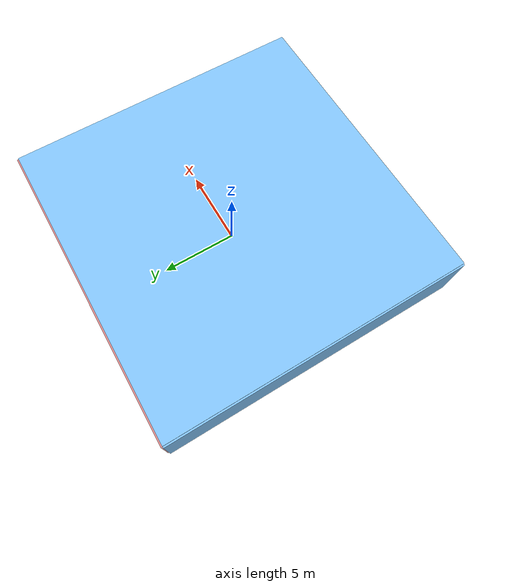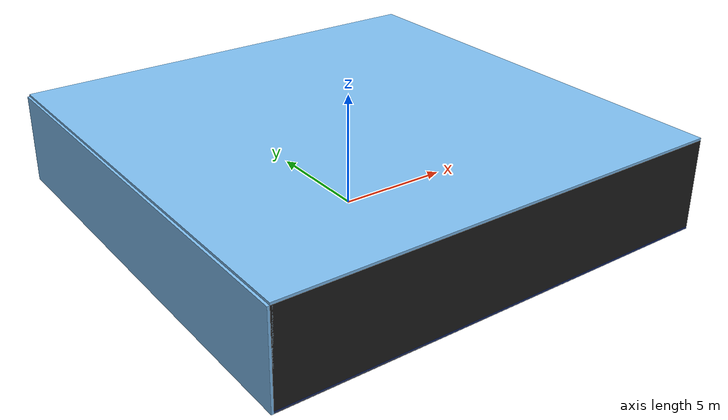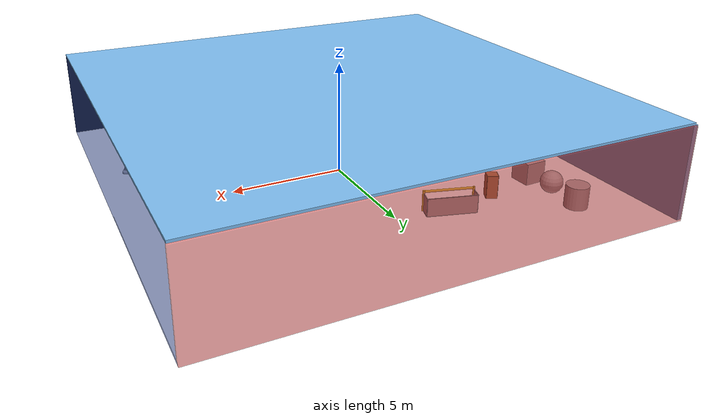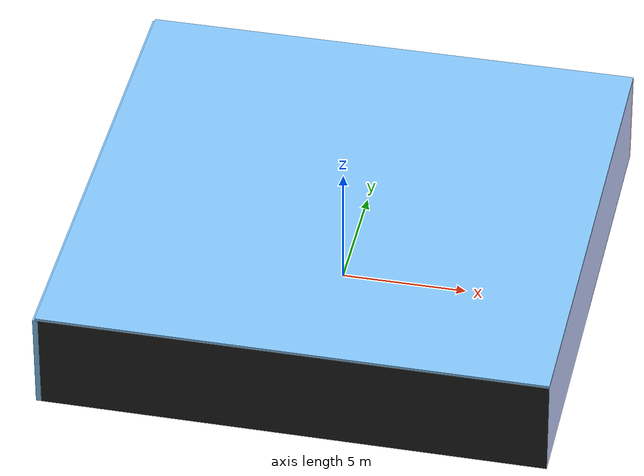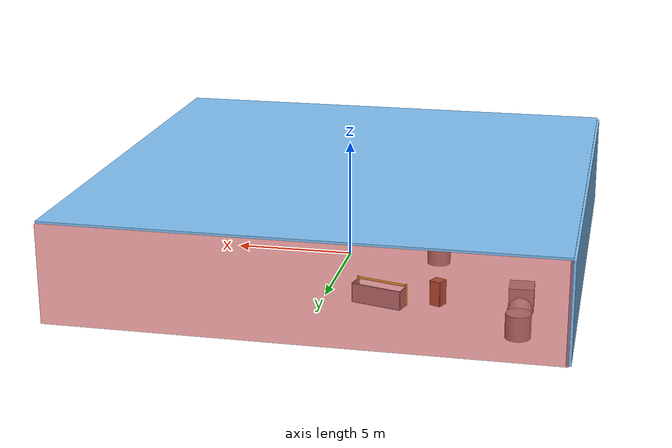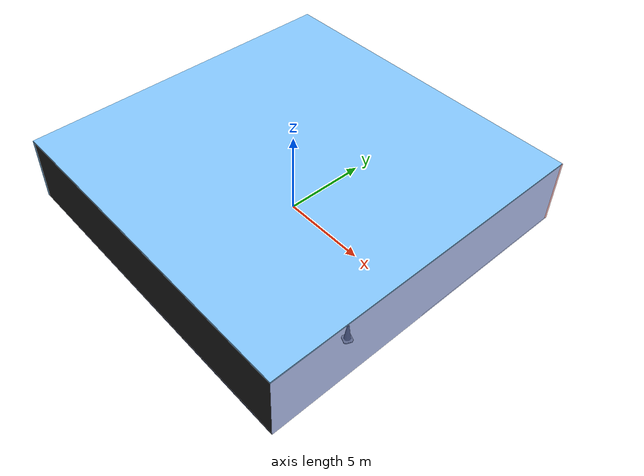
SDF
<sdf version="1.4">
 <world name="default">
  <physics type="ode">
   <max_step_size>0.001</max_step_size>
   <real_time_factor>1</real_time_factor>
   <real_time_update_rate>1000</real_time_update_rate>
   <gravity>0 0 -9.8</gravity>
  </physics>
  <scene><ambient>0.4 0.4 0.4 1</ambient><background>0.7 0.7 0.7 1</background><shadows>1</shadows></scene>
  <model name="Surrounding">
   <static>1</static>
   <link name="Ceiling">
    <collision name="Ceiling_Collision"><geometry><box><size>20 20 0.1</size></box></geometry></collision>
    <visual name="Ceiling_Visual">
     <geometry><box><size>20 20 0.1</size></box></geometry>
     <material>
      <script><uri>file://media/materials/scripts/gazebo.material</uri><name>Gazebo/SkyBlue</name></script>
     </material>
    </visual>
    <pose>0 0 4.05 0 0 0</pose>
   </link>
   <link name="Wall_South">
    <collision name="Wall_South_Collision">
     <geometry><box><size>20 0 4</size></box></geometry>
     <pose>0 0 2 0 -0 0</pose>
    </collision>
    <visual name="Wall_South_Visual">
     <pose>0 0 2 0 -0 0</pose>
     <geometry><box><size>20 0 4</size></box></geometry>
     <material>
      <script><uri>file://media/materials/scripts/gazebo.material</uri><name>Gazebo/FlatBlack</name></script>
     </material>
    </visual>
    <velocity_decay><linear>0</linear><angular>0</angular></velocity_decay>
    <pose>0 -10 0 0 -0 0</pose>
   </link>
   <link name="Wall_East">
    <collision name="Wall_21_Collision">
     <geometry><box><size>20 0 4</size></box></geometry>
     <pose>0 0 2 0 -0 0</pose>
    </collision>
    <visual name="Wall_21_Visual">
     <pose>0 0 2 0 -0 0</pose>
     <geometry><box><size>20 0 4</size></box></geometry>
     <material>
      <script><uri>file://media/materials/scripts/gazebo.material</uri><name>Gazebo/BlueTransparent</name></script>
     </material>
    </visual>
    <velocity_decay><linear>0</linear><angular>0</angular></velocity_decay>
    <pose>10 0 0 0 -0 1.5708</pose>
   </link>
   <link name="Wall_North">
    <collision name="Wall_22_Collision">
     <geometry><box><size>20 0.2 4</size></box></geometry>
     <pose>0 0 2 0 -0 0</pose>
    </collision>
    <visual name="Wall_22_Visual">
     <pose>0 0 2 0 -0 0</pose>
     <geometry><box><size>20 0.2 4</size></box></geometry>
     <material>
      <script><uri>file://media/materials/scripts/gazebo.material</uri><name>Gazebo/RedTransparent</name></script>
     </material>
    </visual>
    <velocity_decay><linear>0</linear><angular>0</angular></velocity_decay>
    <pose>0 10 0 0 -0 0</pose>
   </link>
   <link name="Wall_West">
    <collision name="Wall_23_Collision">
     <geometry><box><size>20 0.2 4</size></box></geometry>
     <pose>0 0 2 0 -0 0</pose>
    </collision>
    <visual name="Wall_23_Visual">
     <pose>0 0 2 0 -0 0</pose>
     <geometry><box><size>20 0.2 4</size></box></geometry>
     <material>
      <script><uri>file://media/materials/scripts/gazebo.material</uri><name>Gazebo/SkyBlue</name></script>
     </material>
    </visual>
    <velocity_decay><linear>0</linear><angular>0</angular></velocity_decay>
    <pose>-10 0 0 0 0 -1.5708</pose>
   </link>
   <link name="Ground_link">
    <collision name="collision">
     <pose>0 0 .05 0 -0 0</pose>
     <geometry><box><size>20 20 0.1</size></box></geometry>
    </collision>
    <visual name="visual">
     <pose>0 0 .05 0 -0 0</pose>
     <geometry><box><size>20 20 0.1</size></box></geometry>
     <material>
      <script><uri>file://media/materials/scripts/gazebo.material</uri><name>Gazebo/BlueTransparent</name></script>
     </material>
    </visual>
   </link>
   <static>1</static>
  </model>
  <spherical_coordinates>
   <surface_model>EARTH_WGS84</surface_model>
   <latitude_deg>0</latitude_deg>
   <longitude_deg>0</longitude_deg>
   <elevation>0</elevation>
   <heading_deg>0</heading_deg>
  </spherical_coordinates>
  <light name="lightball_0" type="diffuse">
   <diffuse>0.8 0.8 0.8 1</diffuse>
   <specular>0.2 0.2 0.2 1</specular>
   <attenuation>
    <range>100</range>
    <constant>0.7</constant>
    <linear>0.01</linear>
    <quadratic>0.001</quadratic>
   </attenuation>
   <direction>-0.5 0.1 -0.9</direction>
   <pose>1.3812855201 2.81673588304 2.19588317546 0 0 0</pose>
  </light>
  <light name="lightball_1" type="diffuse">
   <diffuse>0.8 0.8 0.8 1</diffuse>
   <specular>0.2 0.2 0.2 1</specular>
   <attenuation>
    <range>100</range>
    <constant>0.7</constant>
    <linear>0.01</linear>
    <quadratic>0.001</quadratic>
   </attenuation>
   <direction>-0.5 0.1 -0.9</direction>
   <pose>5.79797212997 -0.925427561203 3.41007947291 0 0 0</pose>
  </light>
  <light name="lightball_2" type="diffuse">
   <diffuse>0.8 0.8 0.8 1</diffuse>
   <specular>0.2 0.2 0.2 1</specular>
   <attenuation>
    <range>100</range>
    <constant>0.7</constant>
    <linear>0.01</linear>
    <quadratic>0.001</quadratic>
   </attenuation>
   <direction>-0.5 0.1 -0.9</direction>
   <pose>7.20825729168 4.65368353362 2.49114492403 0 0 0</pose>
  </light>
  <light name="lightball_3" type="diffuse">
   <diffuse>0.8 0.8 0.8 1</diffuse>
   <specular>0.2 0.2 0.2 1</specular>
   <attenuation>
    <range>100</range>
    <constant>0.7</constant>
    <linear>0.01</linear>
    <quadratic>0.001</quadratic>
   </attenuation>
   <direction>-0.5 0.1 -0.9</direction>
   <pose>4.54834297249 6.6533793759 3.08098066882 0 0 0</pose>
  </light>
  <include>
   <uri>model://textured_shapes</uri>
   <pose>-7.82404513388 5.08247657734 0 0 0 0.0430494927196</pose>
  </include>
  <include>
   <uri>model://textured_shapes</uri>
   <pose>-3.36397431719 -2.46486259461 0 0 0 0.261868524115</pose>
  </include>
  <include><uri>model://cabinet</uri><pose>-4.57699609707 5.05591744711 0 0 0 1.14166219779</pose></include>
  <include>
   <uri>model://robocup_3Dsim_goal</uri>
   <pose>-2.35272448283 5.22427167986 0 0 0 1.3000222169</pose>
  </include>
  <include>
   <uri>model://construction_cone</uri>
   <pose>4.28569062194 -2.21117782214 0 0 0 2.54901410205</pose>
  </include>
  <include>
   <uri>model://construction_cone</uri>
   <pose>8.56120154046 -4.04238066147 0 0 0 1.16498129446</pose>
  </include>
 </world>
</sdf>

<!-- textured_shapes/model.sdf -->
<sdf version="1.6">
  <model name="textured_shapes">
    <pose>0 0 0.5 0 0 0</pose>
    <link name="box">
      <pose>0 -1.5 0 0 0 0</pose>
      <collision name="collision">
        <geometry>
          <box>
            <size>1 1 1</size>
          </box>
        </geometry>
      </collision>
      <visual name="visual">
        <geometry>
          <box>
            <size>1 1 1</size>
          </box>
        </geometry>
        <material>
          <script>
            <uri>model://../model_source/models/textured_shapes/materials/scripts</uri>
            <uri>model://../model_source/models/textured_shapes/materials/textures</uri>
            <name>TexturedShape/Squares</name>
          </script>
        </material>
      </visual>
    </link>
    <link name="sphere">
      <collision name="collision">
        <geometry>
          <sphere>
            <radius>0.5</radius>
          </sphere>
        </geometry>
      </collision>
      <visual name="visual">
        <geometry>
          <sphere>
            <radius>0.5</radius>
          </sphere>
        </geometry>
        <material>
          <script>
            <uri>model://../model_source/models/textured_shapes/materials/scripts</uri>
            <uri>model://../model_source/models/textured_shapes/materials/textures</uri>
            <name>TexturedShape/Squares</name>
          </script>
        </material>
      </visual>
    </link>
    <link name="cylinder">
      <pose>0 1.5 0 0 0 0</pose>
      <collision name="collision">
        <geometry>
          <cylinder>
            <radius>0.5</radius>
            <length>1</length>
          </cylinder>
        </geometry>
      </collision>
      <visual name="visual">
        <geometry>
          <cylinder>
            <radius>0.5</radius>
            <length>1</length>
          </cylinder>
        </geometry>
        <material>
          <script>
            <uri>model://../model_source/models/textured_shapes/materials/scripts</uri>
            <uri>model://../model_source/models/textured_shapes/materials/textures</uri>
            <name>TexturedShape/Squares</name>
          </script>
        </material>
      </visual>
    </link>
  </model>
</sdf>

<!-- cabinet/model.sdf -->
<sdf version="1.5">
  <model name="cabinet">
    <static>true</static>
    <link name="cabinet_bottom_plate">
      <inertial>
        <pose>0 0 -1 0 0 0</pose>
        <inertia>
          <ixx>2.050000</ixx>
          <ixy>0</ixy>
          <ixz>0</ixz>
          <iyy>2.050000</iyy>
          <iyz>0</iyz>
          <izz>2.050000</izz>
        </inertia>
        <mass>25.000000</mass>
      </inertial>
      <collision name="cabinet_bottom_plate_geom">
        <pose>0 0 0.010000 0 0 0</pose>
        <geometry>
          <box>
            <size>0.450000 0.450000 0.020000</size>
          </box>
        </geometry>
      </collision>
      <visual name="cabinet_bottom_plate_geom_visual">
        <pose>0 0 0.010000 0 0 0</pose>
        <geometry>
          <box>
            <size>0.450000 0.450000 0.020000</size>
          </box>
        </geometry>
        <material>
          <script>
            <uri>model://media/materials/scripts/gazebo.material</uri>
            <name>Gazebo/Wood</name>
          </script>
        </material>
      </visual>
      <collision name="cabinet_bottom_plate_geom_cabinet_back_plate">
        <pose>0.235000 0 0.510000 0 0 0</pose>
        <geometry>
          <box>
            <size>0.020000 0.450000 1.020000</size>
          </box>
        </geometry>
      </collision>
      <visual name="cabinet_bottom_plate_geom_cabinet_back_plate_visual">
        <pose>0.235000 0 0.510000 0 0 0</pose>
        <geometry>
          <box>
            <size>0.020000 0.450000 1.020000</size>
          </box>
        </geometry>
        <material>
          <script>
            <uri>model://media/materials/scripts/gazebo.material</uri>
            <name>Gazebo/Wood</name>
          </script>
        </material>
      </visual>
      <collision name="cabinet_bottom_plate_geom_cabinet_left_plate">
        <pose>0 0.235000 0.510000 0 0 0</pose>
        <geometry>
          <box>
            <size>0.450000 0.020000 1.020000</size>
          </box>
        </geometry>
      </collision>
      <visual name="cabinet_bottom_plate_geom_cabinet_left_plate_visual">
        <pose>0 0.235000 0.510000 0 0 0</pose>
        <geometry>
          <box>
            <size>0.450000 0.020000 1.020000</size>
          </box>
        </geometry>
        <material>
          <script>
            <uri>model://media/materials/scripts/gazebo.material</uri>
            <name>Gazebo/Wood</name>
          </script>
        </material>
      </visual>
      <collision name="cabinet_bottom_plate_geom_cabinet_middle_plate">
        <pose>0 0 0.510000 0 0 0</pose>
        <geometry>
          <box>
            <size>0.450000 0.450000 0.020000</size>
          </box>
        </geometry>
      </collision>
      <visual name="cabinet_bottom_plate_geom_cabinet_middle_plate_visual">
        <pose>0 0 0.510000 0 0 0</pose>
        <geometry>
          <box>
            <size>0.450000 0.450000 0.020000</size>
          </box>
        </geometry>
        <material>
          <script>
            <uri>model://media/materials/scripts/gazebo.material</uri>
            <name>Gazebo/Wood</name>
          </script>
        </material>
      </visual>
      <collision name="cabinet_bottom_plate_geom_cabinet_right_plate">
        <pose>0 -0.235000 0.510000 0 0 0</pose>
        <geometry>
          <box>
            <size>0.450000 0.020000 1.020000</size>
          </box>
        </geometry>
      </collision>
      <visual name="cabinet_bottom_plate_geom_cabinet_right_plate_visual">
        <pose>0 -0.235000 0.510000 0 0 0</pose>
        <geometry>
          <box>
            <size>0.450000 0.020000 1.020000</size>
          </box>
        </geometry>
        <material>
          <script>
            <uri>model://media/materials/scripts/gazebo.material</uri>
            <name>Gazebo/Wood</name>
          </script>
        </material>
      </visual>
      <collision name="cabinet_bottom_plate_geom_cabinet_top_plate">
        <pose>0 0 1.010000 0 0 0</pose>
        <geometry>
          <box>
            <size>0.450000 0.450000 0.020000</size>
          </box>
        </geometry>
      </collision>
      <visual name="cabinet_bottom_plate_geom_cabinet_top_plate_visual">
        <pose>0 0 1.010000 0 0 0</pose>
        <geometry>
          <box>
            <size>0.450000 0.450000 0.020000</size>
          </box>
        </geometry>
        <material>
          <script>
            <uri>model://media/materials/scripts/gazebo.material</uri>
            <name>Gazebo/Wood</name>
          </script>
        </material>
      </visual>
    </link>
  </model>
</sdf>

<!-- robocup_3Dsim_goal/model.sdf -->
<sdf version="1.5">
  <model name="robocup_3d_goal">
    <static>true</static>
    <link name="left_post">
      <pose>0 1.05 0.45 0 0 0</pose>
      <collision name="collision">
        <geometry>
          <cylinder>
            <radius>0.05</radius>
            <length>0.9</length>
          </cylinder>
        </geometry>
      </collision>
      <visual name="visual">
        <geometry>
          <cylinder>
            <radius>0.05</radius>
            <length>0.9</length>
          </cylinder>
        </geometry>
        <material>
          <script>
            <uri>file://media/materials/scripts/gazebo.material</uri>
            <name>Gazebo/ZincYellow</name>
          </script>
        </material>
      </visual>
    </link>
    <link name="left_support_horiz_lower">
      <pose>0.30 1.05 0.01 0 0 0</pose>
      <collision name="collision">
        <geometry>
          <box>
            <size>0.50 0.02 0.02</size>
          </box>
        </geometry>
      </collision>
      <visual name="visual">
        <geometry>
          <box>
            <size>0.50 0.02 0.02</size>
          </box>
        </geometry>
        <material>
          <script>
            <uri>file://media/materials/scripts/gazebo.material</uri>
            <name>Gazebo/White</name>
          </script>
        </material>
      </visual>
    </link>
    <link name="left_support_horiz_upper">
      <pose>0.30 1.05 0.79 0 0 0</pose>
      <collision name="collision">
        <geometry>
          <box>
            <size>0.50 0.02 0.02</size>
          </box>
        </geometry>
      </collision>
      <visual name="visual">
        <geometry>
          <box>
            <size>0.50 0.02 0.02</size>
          </box>
        </geometry>
        <material>
          <script>
            <uri>file://media/materials/scripts/gazebo.material</uri>
            <name>Gazebo/White</name>
          </script>
        </material>
      </visual>
    </link>
    <link name="left_support_vertical">
      <pose>0.56 1.05 0.4 0 1.5708 0</pose>
      <collision name="collision">
        <geometry>
          <box>
            <size>0.80 0.02 0.02</size>
          </box>
        </geometry>
      </collision>
      <visual name="visual">
        <geometry>
          <box>
            <size>0.80 0.02 0.02</size>
          </box>
        </geometry>
        <material>
          <script>
            <uri>file://media/materials/scripts/gazebo.material</uri>
            <name>Gazebo/White</name>
          </script>
        </material>
      </visual>
    </link>
    <link name="right_support_horiz_lower">
      <pose>0.30 -1.05 0.01 0 0 0</pose>
      <collision name="collision">
        <geometry>
          <box>
            <size>0.50 0.02 0.02</size>
          </box>
        </geometry>
      </collision>
      <visual name="visual">
        <geometry>
          <box>
            <size>0.50 0.02 0.02</size>
          </box>
        </geometry>
        <material>
          <script>
            <uri>file://media/materials/scripts/gazebo.material</uri>
            <name>Gazebo/White</name>
          </script>
        </material>
      </visual>
    </link>
    <link name="right_support_horiz_upper">
      <pose>0.30 -1.05 0.79 0 0 0</pose>
      <collision name="collision">
        <geometry>
          <box>
            <size>0.50 0.02 0.02</size>
          </box>
        </geometry>
      </collision>
      <visual name="visual">
        <geometry>
          <box>
            <size>0.50 0.02 0.02</size>
          </box>
        </geometry>
        <material>
          <script>
            <uri>file://media/materials/scripts/gazebo.material</uri>
            <name>Gazebo/White</name>
          </script>
        </material>
      </visual>
    </link>
    <link name="right_support_vertical">
      <pose>0.56 -1.05 0.4 0 1.5708 0</pose>
      <collision name="collision">
        <geometry>
          <box>
            <size>0.80 0.02 0.02</size>
          </box>
        </geometry>
      </collision>
      <visual name="visual">
        <geometry>
          <box>
            <size>0.80 0.02 0.02</size>
          </box>
        </geometry>
        <material>
          <script>
            <uri>file://media/materials/scripts/gazebo.material</uri>
            <name>Gazebo/White</name>
          </script>
        </material>
      </visual>
    </link>
    <link name="center_support_horiz_lower">
      <pose>0.56 0 0.01 0 1.5708 0</pose>
      <collision name="collision">
        <geometry>
          <box>
            <size>0.02 2.08 0.02</size>
          </box>
        </geometry>
      </collision>
      <visual name="visual">
        <geometry>
          <box>
            <size>0.02 2.08 0.02</size>
          </box>
        </geometry>
        <material>
          <script>
            <uri>file://media/materials/scripts/gazebo.material</uri>
            <name>Gazebo/White</name>
          </script>
        </material>
      </visual>
    </link>
    <link name="center_support_horiz_upper">
      <pose>0.56 0 0.79 0 1.5708 0</pose>
      <collision name="collision">
        <geometry>
          <box>
            <size>0.02 2.08 0.02</size>
          </box>
        </geometry>
      </collision>
      <visual name="visual">
        <geometry>
          <box>
            <size>0.02 2.08 0.02</size>
          </box>
        </geometry>
        <material>
          <script>
            <uri>file://media/materials/scripts/gazebo.material</uri>
            <name>Gazebo/White</name>
          </script>
        </material>
      </visual>
    </link>
    <link name="right_post">
      <pose>0 -1.05 0.45 0 0 0</pose>
      <collision name="collision">
        <geometry>
          <cylinder>
            <radius>0.05</radius>
            <length>0.9</length>
          </cylinder>
        </geometry>
      </collision>
      <visual name="visual">
        <geometry>
          <cylinder>
            <radius>0.05</radius>
            <length>0.9</length>
          </cylinder>
        </geometry>
        <material>
          <script>
            <uri>file://media/materials/scripts/gazebo.material</uri>
            <name>Gazebo/ZincYellow</name>
          </script>
        </material>
      </visual>
    </link>
    <link name="crossbar">
      <pose>0 0 0.85 1.57 1.57 0</pose>
      <collision name="collision">
        <geometry>
          <cylinder>
            <radius>0.05</radius>
            <length>2.0</length>
          </cylinder>
        </geometry>
      </collision>
      <visual name="visual">
        <geometry>
          <cylinder>
            <radius>0.05</radius>
            <length>2.0</length>
          </cylinder>
        </geometry>
        <material>
          <script>
            <uri>file://media/materials/scripts/gazebo.material</uri>
            <name>Gazebo/ZincYellow</name>
          </script>
        </material>
      </visual>
    </link>
    <link name="center_net">
      <pose>0.56 0 0.40 0 0 0</pose>
      <collision name="collision">
        <geometry>
          <box>
            <size>0.01 2.1 0.80</size>
          </box>
        </geometry>
      </collision>
      <visual name="visual">
        <geometry>
          <box>
            <size>0.01 2.1 0.80</size>
          </box>
        </geometry>
        <material>
          <script>
            <uri>model://../model_source/models/robocup09_spl_field/materials/scripts/</uri>
            <uri>model://../model_source/models/robocup09_spl_field/materials/textures/</uri>
            <name>RoboCup/Net</name>
          </script>
        </material>
      </visual>
    </link>
    <link name="left_net">
      <pose>0.30 1.05 0.40 0 0 0</pose>
      <collision name="collision">
        <geometry>
          <box>
            <size>0.50 0.01 0.76</size>
          </box>
        </geometry>
      </collision>
      <visual name="visual">
        <geometry>
          <box>
            <size>0.50 0.01 0.76</size>
          </box>
        </geometry>
        <material>
          <script>
            <uri>model://../model_source/models/robocup09_spl_field/materials/scripts/</uri>
            <uri>model://../model_source/models/robocup09_spl_field/materials/textures/</uri>
            <name>RoboCup/Net</name>
          </script>
        </material>
      </visual>
    </link>
    <link name="right_net">
      <pose>0.30 -1.05 0.40 0 0 0</pose>
      <collision name="collision">
        <geometry>
          <box>
            <size>0.50 0.01 0.76</size>
          </box>
        </geometry>
      </collision>
      <visual name="visual">
        <geometry>
          <box>
            <size>0.50 0.01 0.76</size>
          </box>
        </geometry>
        <material>
          <script>
            <uri>model://../model_source/models/robocup09_spl_field/materials/scripts/</uri>
            <uri>model://../model_source/models/robocup09_spl_field/materials/textures/</uri>
            <name>RoboCup/Net</name>
          </script>
        </material>
      </visual>
    </link>
  </model>
</sdf>

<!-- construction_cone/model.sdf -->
<sdf version="1.5">
  <model name="Construction Cone">
    <link name="link">
      <collision name="collision">
        <geometry>
          <mesh>
            <scale>10 10 10</scale>
            <uri>file://isr-testbed/construction_cone/meshes/construction_cone.dae</uri>
          </mesh>
        </geometry>
      </collision>
      <visual name="visual">
        <geometry>
          <mesh>
            <scale>10 10 10</scale>
            <uri>file://isr-testbed/construction_cone/meshes/construction_cone.dae</uri>
          </mesh>
        </geometry>
      </visual>
    </link>
  </model>
</sdf>
